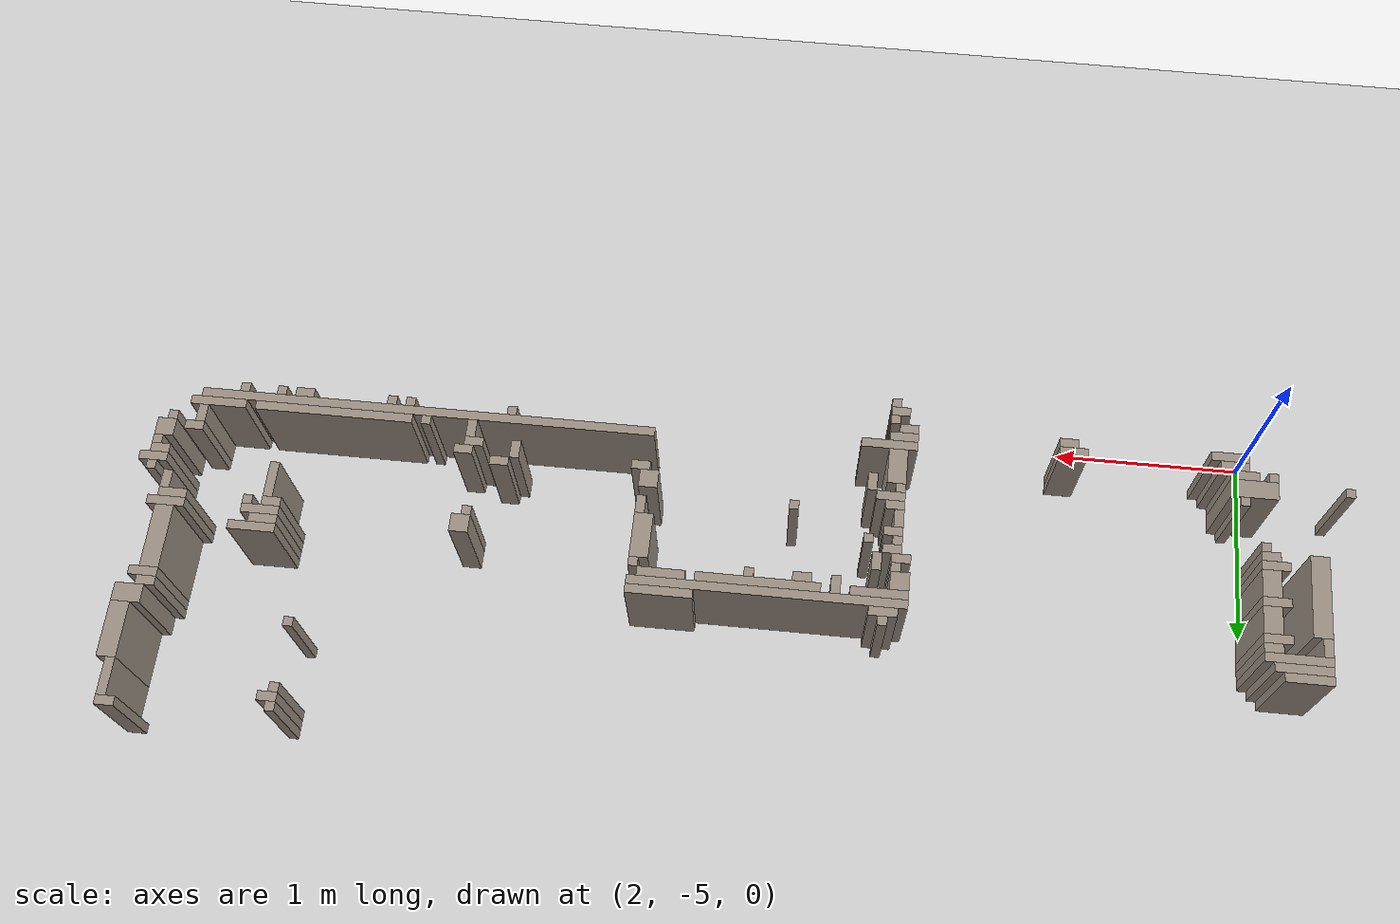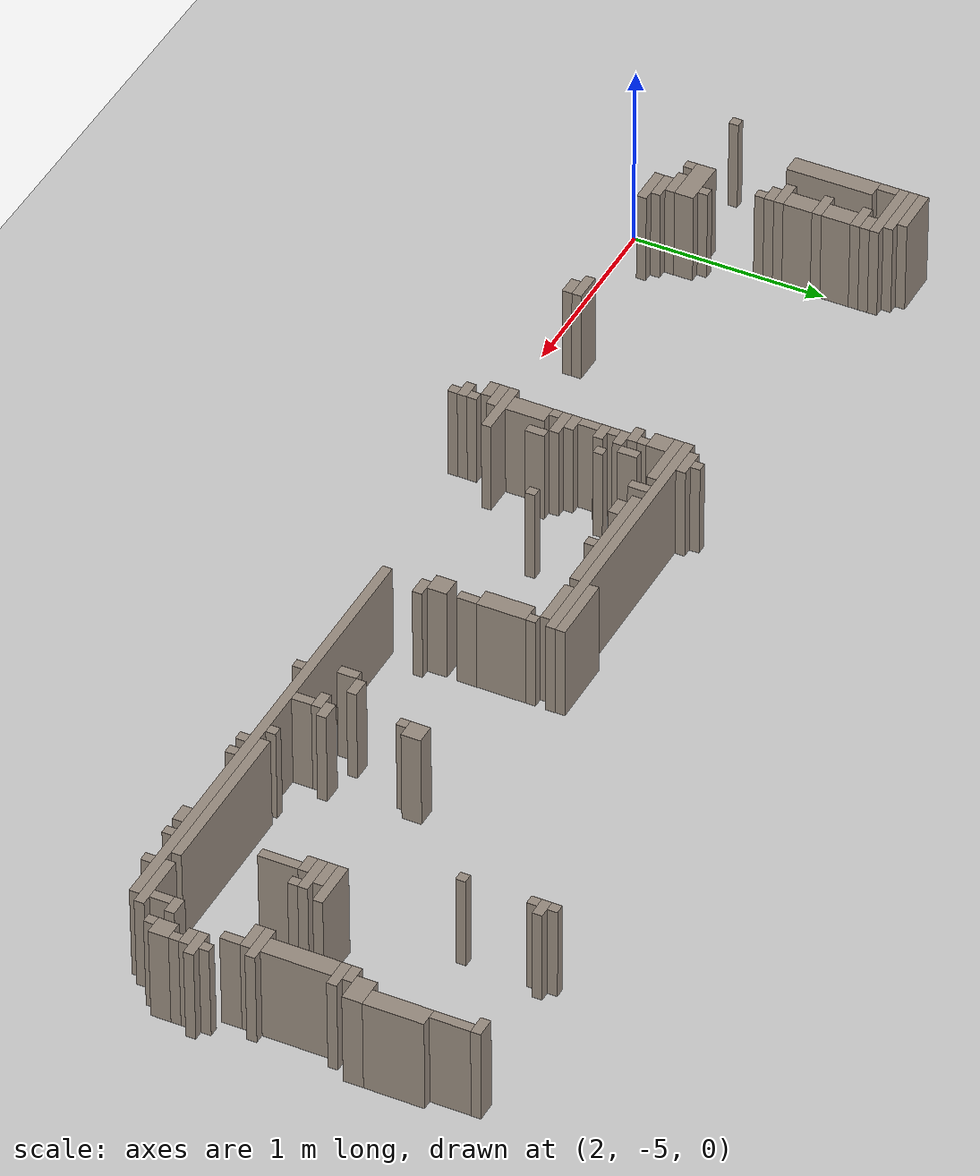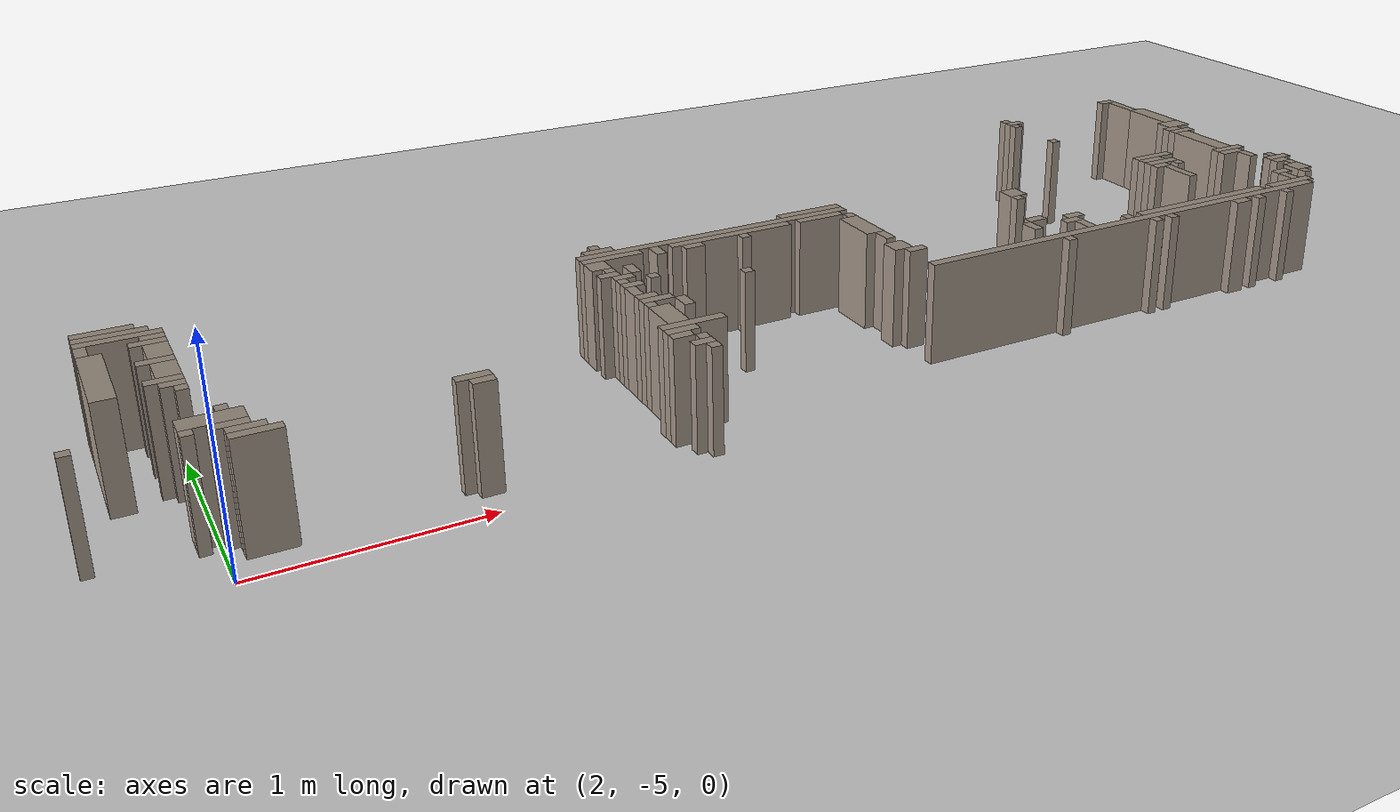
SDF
<sdf version="1.8">
 <world name="bolsao_real">
  <model name="ground_plane">
   <static>true</static>
   <link name="link">
    <collision name="col">
     <geometry><plane><normal>0 0 1</normal><size>100 100</size></plane></geometry>
    </collision>
    <visual name="vis">
     <geometry><plane><normal>0 0 1</normal><size>100 100</size></plane></geometry>
     <material><ambient>0.8 0.8 0.8 1</ambient><diffuse>0.8 0.8 0.8 1</diffuse></material>
    </visual>
   </link>
  </model>
  <model name="wall_83">
   <static>true</static>
   <pose>6.940 -2.988 0.250 0 0 0</pose>
   <link name="link">
    <collision name="col"><geometry><box><size>0.050 0.050 0.500</size></box></geometry></collision>
    <visual name="vis">
     <geometry><box><size>0.050 0.050 0.500</size></box></geometry>
     <material><ambient>0.6 0.55 0.5 1</ambient><diffuse>0.6 0.55 0.5 1</diffuse></material>
    </visual>
   </link>
  </model>
  <model name="wall_84">
   <static>true</static>
   <pose>6.940 -3.088 0.250 0 0 0</pose>
   <link name="link">
    <collision name="col"><geometry><box><size>0.050 0.050 0.500</size></box></geometry></collision>
    <visual name="vis">
     <geometry><box><size>0.050 0.050 0.500</size></box></geometry>
     <material><ambient>0.6 0.55 0.5 1</ambient><diffuse>0.6 0.55 0.5 1</diffuse></material>
    </visual>
   </link>
  </model>
  <model name="wall_88">
   <static>true</static>
   <pose>7.715 -3.588 0.250 0 0 0</pose>
   <link name="link">
    <collision name="col"><geometry><box><size>0.100 0.050 0.500</size></box></geometry></collision>
    <visual name="vis">
     <geometry><box><size>0.100 0.050 0.500</size></box></geometry>
     <material><ambient>0.6 0.55 0.5 1</ambient><diffuse>0.6 0.55 0.5 1</diffuse></material>
    </visual>
   </link>
  </model>
  <model name="wall_91">
   <static>true</static>
   <pose>1.965 -3.788 0.250 0 0 0</pose>
   <link name="link">
    <collision name="col"><geometry><box><size>0.100 0.050 0.500</size></box></geometry></collision>
    <visual name="vis">
     <geometry><box><size>0.100 0.050 0.500</size></box></geometry>
     <material><ambient>0.6 0.55 0.5 1</ambient><diffuse>0.6 0.55 0.5 1</diffuse></material>
    </visual>
   </link>
  </model>
  <model name="wall_96">
   <static>true</static>
   <pose>1.940 -3.838 0.250 0 0 0</pose>
   <link name="link">
    <collision name="col"><geometry><box><size>0.150 0.050 0.500</size></box></geometry></collision>
    <visual name="vis">
     <geometry><box><size>0.150 0.050 0.500</size></box></geometry>
     <material><ambient>0.6 0.55 0.5 1</ambient><diffuse>0.6 0.55 0.5 1</diffuse></material>
    </visual>
   </link>
  </model>
  <model name="wall_100">
   <static>true</static>
   <pose>1.965 -3.938 0.250 0 0 0</pose>
   <link name="link">
    <collision name="col"><geometry><box><size>0.100 0.150 0.500</size></box></geometry></collision>
    <visual name="vis">
     <geometry><box><size>0.100 0.150 0.500</size></box></geometry>
     <material><ambient>0.6 0.55 0.5 1</ambient><diffuse>0.6 0.55 0.5 1</diffuse></material>
    </visual>
   </link>
  </model>
  <model name="wall_101">
   <static>true</static>
   <pose>3.865 -3.963 0.250 0 0 0</pose>
   <link name="link">
    <collision name="col"><geometry><box><size>0.100 0.100 0.500</size></box></geometry></collision>
    <visual name="vis">
     <geometry><box><size>0.100 0.100 0.500</size></box></geometry>
     <material><ambient>0.6 0.55 0.5 1</ambient><diffuse>0.6 0.55 0.5 1</diffuse></material>
    </visual>
   </link>
  </model>
  <model name="wall_108">
   <static>true</static>
   <pose>3.890 -4.038 0.250 0 0 0</pose>
   <link name="link">
    <collision name="col"><geometry><box><size>0.050 0.050 0.500</size></box></geometry></collision>
    <visual name="vis">
     <geometry><box><size>0.050 0.050 0.500</size></box></geometry>
     <material><ambient>0.6 0.55 0.5 1</ambient><diffuse>0.6 0.55 0.5 1</diffuse></material>
    </visual>
   </link>
  </model>
  <model name="wall_109">
   <static>true</static>
   <pose>1.940 -4.038 0.250 0 0 0</pose>
   <link name="link">
    <collision name="col"><geometry><box><size>0.150 0.050 0.500</size></box></geometry></collision>
    <visual name="vis">
     <geometry><box><size>0.150 0.050 0.500</size></box></geometry>
     <material><ambient>0.6 0.55 0.5 1</ambient><diffuse>0.6 0.55 0.5 1</diffuse></material>
    </visual>
   </link>
  </model>
  <model name="wall_110">
   <static>true</static>
   <pose>3.915 -4.138 0.250 0 0 0</pose>
   <link name="link">
    <collision name="col"><geometry><box><size>0.100 0.050 0.500</size></box></geometry></collision>
    <visual name="vis">
     <geometry><box><size>0.100 0.050 0.500</size></box></geometry>
     <material><ambient>0.6 0.55 0.5 1</ambient><diffuse>0.6 0.55 0.5 1</diffuse></material>
    </visual>
   </link>
  </model>
  <model name="wall_111">
   <static>true</static>
   <pose>5.240 -3.938 0.250 0 0 0</pose>
   <link name="link">
    <collision name="col"><geometry><box><size>0.050 0.050 0.500</size></box></geometry></collision>
    <visual name="vis">
     <geometry><box><size>0.050 0.050 0.500</size></box></geometry>
     <material><ambient>0.6 0.55 0.5 1</ambient><diffuse>0.6 0.55 0.5 1</diffuse></material>
    </visual>
   </link>
  </model>
  <model name="wall_112">
   <static>true</static>
   <pose>1.965 -4.138 0.250 0 0 0</pose>
   <link name="link">
    <collision name="col"><geometry><box><size>0.100 0.150 0.500</size></box></geometry></collision>
    <visual name="vis">
     <geometry><box><size>0.100 0.150 0.500</size></box></geometry>
     <material><ambient>0.6 0.55 0.5 1</ambient><diffuse>0.6 0.55 0.5 1</diffuse></material>
    </visual>
   </link>
  </model>
  <model name="wall_113">
   <static>true</static>
   <pose>3.890 -4.188 0.250 0 0 0</pose>
   <link name="link">
    <collision name="col"><geometry><box><size>0.050 0.050 0.500</size></box></geometry></collision>
    <visual name="vis">
     <geometry><box><size>0.050 0.050 0.500</size></box></geometry>
     <material><ambient>0.6 0.55 0.5 1</ambient><diffuse>0.6 0.55 0.5 1</diffuse></material>
    </visual>
   </link>
  </model>
  <model name="wall_115">
   <static>true</static>
   <pose>7.815 -3.313 0.250 0 0 0</pose>
   <link name="link">
    <collision name="col"><geometry><box><size>0.100 0.300 0.500</size></box></geometry></collision>
    <visual name="vis">
     <geometry><box><size>0.100 0.300 0.500</size></box></geometry>
     <material><ambient>0.6 0.55 0.5 1</ambient><diffuse>0.6 0.55 0.5 1</diffuse></material>
    </visual>
   </link>
  </model>
  <model name="wall_116">
   <static>true</static>
   <pose>3.915 -4.238 0.250 0 0 0</pose>
   <link name="link">
    <collision name="col"><geometry><box><size>0.100 0.050 0.500</size></box></geometry></collision>
    <visual name="vis">
     <geometry><box><size>0.100 0.050 0.500</size></box></geometry>
     <material><ambient>0.6 0.55 0.5 1</ambient><diffuse>0.6 0.55 0.5 1</diffuse></material>
    </visual>
   </link>
  </model>
  <model name="wall_117">
   <static>true</static>
   <pose>5.215 -4.088 0.250 0 0 0</pose>
   <link name="link">
    <collision name="col"><geometry><box><size>0.100 0.250 0.500</size></box></geometry></collision>
    <visual name="vis">
     <geometry><box><size>0.100 0.250 0.500</size></box></geometry>
     <material><ambient>0.6 0.55 0.5 1</ambient><diffuse>0.6 0.55 0.5 1</diffuse></material>
    </visual>
   </link>
  </model>
  <model name="wall_118">
   <static>true</static>
   <pose>7.840 -4.238 0.250 0 0 0</pose>
   <link name="link">
    <collision name="col"><geometry><box><size>0.050 0.050 0.500</size></box></geometry></collision>
    <visual name="vis">
     <geometry><box><size>0.050 0.050 0.500</size></box></geometry>
     <material><ambient>0.6 0.55 0.5 1</ambient><diffuse>0.6 0.55 0.5 1</diffuse></material>
    </visual>
   </link>
  </model>
  <model name="wall_119">
   <static>true</static>
   <pose>3.940 -3.788 0.250 0 0 0</pose>
   <link name="link">
    <collision name="col"><geometry><box><size>0.150 0.050 0.500</size></box></geometry></collision>
    <visual name="vis">
     <geometry><box><size>0.150 0.050 0.500</size></box></geometry>
     <material><ambient>0.6 0.55 0.5 1</ambient><diffuse>0.6 0.55 0.5 1</diffuse></material>
    </visual>
   </link>
  </model>
  <model name="wall_121">
   <static>true</static>
   <pose>7.815 -4.338 0.250 0 0 0</pose>
   <link name="link">
    <collision name="col"><geometry><box><size>0.100 0.050 0.500</size></box></geometry></collision>
    <visual name="vis">
     <geometry><box><size>0.100 0.050 0.500</size></box></geometry>
     <material><ambient>0.6 0.55 0.5 1</ambient><diffuse>0.6 0.55 0.5 1</diffuse></material>
    </visual>
   </link>
  </model>
  <model name="wall_122">
   <static>true</static>
   <pose>3.890 -4.313 0.250 0 0 0</pose>
   <link name="link">
    <collision name="col"><geometry><box><size>0.050 0.100 0.500</size></box></geometry></collision>
    <visual name="vis">
     <geometry><box><size>0.050 0.100 0.500</size></box></geometry>
     <material><ambient>0.6 0.55 0.5 1</ambient><diffuse>0.6 0.55 0.5 1</diffuse></material>
    </visual>
   </link>
  </model>
  <model name="wall_123">
   <static>true</static>
   <pose>4.040 -4.188 0.250 0 0 0</pose>
   <link name="link">
    <collision name="col"><geometry><box><size>0.050 0.050 0.500</size></box></geometry></collision>
    <visual name="vis">
     <geometry><box><size>0.050 0.050 0.500</size></box></geometry>
     <material><ambient>0.6 0.55 0.5 1</ambient><diffuse>0.6 0.55 0.5 1</diffuse></material>
    </visual>
   </link>
  </model>
  <model name="wall_126">
   <static>true</static>
   <pose>3.915 -4.388 0.250 0 0 0</pose>
   <link name="link">
    <collision name="col"><geometry><box><size>0.100 0.050 0.500</size></box></geometry></collision>
    <visual name="vis">
     <geometry><box><size>0.100 0.050 0.500</size></box></geometry>
     <material><ambient>0.6 0.55 0.5 1</ambient><diffuse>0.6 0.55 0.5 1</diffuse></material>
    </visual>
   </link>
  </model>
  <model name="wall_127">
   <static>true</static>
   <pose>6.165 -4.063 0.250 0 0 0</pose>
   <link name="link">
    <collision name="col"><geometry><box><size>0.100 0.100 0.500</size></box></geometry></collision>
    <visual name="vis">
     <geometry><box><size>0.100 0.100 0.500</size></box></geometry>
     <material><ambient>0.6 0.55 0.5 1</ambient><diffuse>0.6 0.55 0.5 1</diffuse></material>
    </visual>
   </link>
  </model>
  <model name="wall_129">
   <static>true</static>
   <pose>7.790 -3.063 0.250 0 0 0</pose>
   <link name="link">
    <collision name="col"><geometry><box><size>0.050 0.200 0.500</size></box></geometry></collision>
    <visual name="vis">
     <geometry><box><size>0.050 0.200 0.500</size></box></geometry>
     <material><ambient>0.6 0.55 0.5 1</ambient><diffuse>0.6 0.55 0.5 1</diffuse></material>
    </visual>
   </link>
  </model>
  <model name="wall_133">
   <static>true</static>
   <pose>3.965 -3.888 0.250 0 0 0</pose>
   <link name="link">
    <collision name="col"><geometry><box><size>0.300 0.050 0.500</size></box></geometry></collision>
    <visual name="vis">
     <geometry><box><size>0.300 0.050 0.500</size></box></geometry>
     <material><ambient>0.6 0.55 0.5 1</ambient><diffuse>0.6 0.55 0.5 1</diffuse></material>
    </visual>
   </link>
  </model>
  <model name="wall_138">
   <static>true</static>
   <pose>3.865 -4.088 0.250 0 0 0</pose>
   <link name="link">
    <collision name="col"><geometry><box><size>0.100 0.050 0.500</size></box></geometry></collision>
    <visual name="vis">
     <geometry><box><size>0.100 0.050 0.500</size></box></geometry>
     <material><ambient>0.6 0.55 0.5 1</ambient><diffuse>0.6 0.55 0.5 1</diffuse></material>
    </visual>
   </link>
  </model>
  <model name="wall_139">
   <static>true</static>
   <pose>3.940 -3.738 0.250 0 0 0</pose>
   <link name="link">
    <collision name="col"><geometry><box><size>0.050 0.050 0.500</size></box></geometry></collision>
    <visual name="vis">
     <geometry><box><size>0.050 0.050 0.500</size></box></geometry>
     <material><ambient>0.6 0.55 0.5 1</ambient><diffuse>0.6 0.55 0.5 1</diffuse></material>
    </visual>
   </link>
  </model>
  <model name="wall_140">
   <static>true</static>
   <pose>3.915 -4.613 0.250 0 0 0</pose>
   <link name="link">
    <collision name="col"><geometry><box><size>0.100 0.200 0.500</size></box></geometry></collision>
    <visual name="vis">
     <geometry><box><size>0.100 0.200 0.500</size></box></geometry>
     <material><ambient>0.6 0.55 0.5 1</ambient><diffuse>0.6 0.55 0.5 1</diffuse></material>
    </visual>
   </link>
  </model>
  <model name="wall_141">
   <static>true</static>
   <pose>3.940 -4.888 0.250 0 0 0</pose>
   <link name="link">
    <collision name="col"><geometry><box><size>0.050 0.050 0.500</size></box></geometry></collision>
    <visual name="vis">
     <geometry><box><size>0.050 0.050 0.500</size></box></geometry>
     <material><ambient>0.6 0.55 0.5 1</ambient><diffuse>0.6 0.55 0.5 1</diffuse></material>
    </visual>
   </link>
  </model>
  <model name="wall_142">
   <static>true</static>
   <pose>3.990 -4.063 0.250 0 0 0</pose>
   <link name="link">
    <collision name="col"><geometry><box><size>0.050 0.100 0.500</size></box></geometry></collision>
    <visual name="vis">
     <geometry><box><size>0.050 0.100 0.500</size></box></geometry>
     <material><ambient>0.6 0.55 0.5 1</ambient><diffuse>0.6 0.55 0.5 1</diffuse></material>
    </visual>
   </link>
  </model>
  <model name="wall_148">
   <static>true</static>
   <pose>7.215 -4.038 0.250 0 0 0</pose>
   <link name="link">
    <collision name="col"><geometry><box><size>0.200 0.050 0.500</size></box></geometry></collision>
    <visual name="vis">
     <geometry><box><size>0.200 0.050 0.500</size></box></geometry>
     <material><ambient>0.6 0.55 0.5 1</ambient><diffuse>0.6 0.55 0.5 1</diffuse></material>
    </visual>
   </link>
  </model>
  <model name="wall_149">
   <static>true</static>
   <pose>7.665 -4.488 0.250 0 0 0</pose>
   <link name="link">
    <collision name="col"><geometry><box><size>0.100 0.050 0.500</size></box></geometry></collision>
    <visual name="vis">
     <geometry><box><size>0.100 0.050 0.500</size></box></geometry>
     <material><ambient>0.6 0.55 0.5 1</ambient><diffuse>0.6 0.55 0.5 1</diffuse></material>
    </visual>
   </link>
  </model>
  <model name="wall_150">
   <static>true</static>
   <pose>5.990 -4.738 0.250 0 0 0</pose>
   <link name="link">
    <collision name="col"><geometry><box><size>0.050 0.050 0.500</size></box></geometry></collision>
    <visual name="vis">
     <geometry><box><size>0.050 0.050 0.500</size></box></geometry>
     <material><ambient>0.6 0.55 0.5 1</ambient><diffuse>0.6 0.55 0.5 1</diffuse></material>
    </visual>
   </link>
  </model>
  <model name="wall_152">
   <static>true</static>
   <pose>7.690 -4.088 0.250 0 0 0</pose>
   <link name="link">
    <collision name="col"><geometry><box><size>0.150 0.050 0.500</size></box></geometry></collision>
    <visual name="vis">
     <geometry><box><size>0.150 0.050 0.500</size></box></geometry>
     <material><ambient>0.6 0.55 0.5 1</ambient><diffuse>0.6 0.55 0.5 1</diffuse></material>
    </visual>
   </link>
  </model>
  <model name="wall_153">
   <static>true</static>
   <pose>7.715 -3.838 0.250 0 0 0</pose>
   <link name="link">
    <collision name="col"><geometry><box><size>0.100 0.350 0.500</size></box></geometry></collision>
    <visual name="vis">
     <geometry><box><size>0.100 0.350 0.500</size></box></geometry>
     <material><ambient>0.6 0.55 0.5 1</ambient><diffuse>0.6 0.55 0.5 1</diffuse></material>
    </visual>
   </link>
  </model>
  <model name="wall_154">
   <static>true</static>
   <pose>7.240 -4.738 0.250 0 0 0</pose>
   <link name="link">
    <collision name="col"><geometry><box><size>0.050 0.050 0.500</size></box></geometry></collision>
    <visual name="vis">
     <geometry><box><size>0.050 0.050 0.500</size></box></geometry>
     <material><ambient>0.6 0.55 0.5 1</ambient><diffuse>0.6 0.55 0.5 1</diffuse></material>
    </visual>
   </link>
  </model>
  <model name="wall_157">
   <static>true</static>
   <pose>7.190 -4.213 0.250 0 0 0</pose>
   <link name="link">
    <collision name="col"><geometry><box><size>0.050 0.200 0.500</size></box></geometry></collision>
    <visual name="vis">
     <geometry><box><size>0.050 0.200 0.500</size></box></geometry>
     <material><ambient>0.6 0.55 0.5 1</ambient><diffuse>0.6 0.55 0.5 1</diffuse></material>
    </visual>
   </link>
  </model>
  <model name="wall_164">
   <static>true</static>
   <pose>7.290 -4.088 0.250 0 0 0</pose>
   <link name="link">
    <collision name="col"><geometry><box><size>0.050 0.050 0.500</size></box></geometry></collision>
    <visual name="vis">
     <geometry><box><size>0.050 0.050 0.500</size></box></geometry>
     <material><ambient>0.6 0.55 0.5 1</ambient><diffuse>0.6 0.55 0.5 1</diffuse></material>
    </visual>
   </link>
  </model>
  <model name="wall_165">
   <static>true</static>
   <pose>7.740 -4.163 0.250 0 0 0</pose>
   <link name="link">
    <collision name="col"><geometry><box><size>0.050 0.100 0.500</size></box></geometry></collision>
    <visual name="vis">
     <geometry><box><size>0.050 0.100 0.500</size></box></geometry>
     <material><ambient>0.6 0.55 0.5 1</ambient><diffuse>0.6 0.55 0.5 1</diffuse></material>
    </visual>
   </link>
  </model>
  <model name="wall_174">
   <static>true</static>
   <pose>6.015 -4.438 0.250 0 0 0</pose>
   <link name="link">
    <collision name="col"><geometry><box><size>0.100 0.050 0.500</size></box></geometry></collision>
    <visual name="vis">
     <geometry><box><size>0.100 0.050 0.500</size></box></geometry>
     <material><ambient>0.6 0.55 0.5 1</ambient><diffuse>0.6 0.55 0.5 1</diffuse></material>
    </visual>
   </link>
  </model>
  <model name="wall_175">
   <static>true</static>
   <pose>7.765 -2.938 0.250 0 0 0</pose>
   <link name="link">
    <collision name="col"><geometry><box><size>0.100 0.050 0.500</size></box></geometry></collision>
    <visual name="vis">
     <geometry><box><size>0.100 0.050 0.500</size></box></geometry>
     <material><ambient>0.6 0.55 0.5 1</ambient><diffuse>0.6 0.55 0.5 1</diffuse></material>
    </visual>
   </link>
  </model>
  <model name="wall_177">
   <static>true</static>
   <pose>3.865 -4.838 0.250 0 0 0</pose>
   <link name="link">
    <collision name="col"><geometry><box><size>0.100 0.050 0.500</size></box></geometry></collision>
    <visual name="vis">
     <geometry><box><size>0.100 0.050 0.500</size></box></geometry>
     <material><ambient>0.6 0.55 0.5 1</ambient><diffuse>0.6 0.55 0.5 1</diffuse></material>
    </visual>
   </link>
  </model>
  <model name="wall_178">
   <static>true</static>
   <pose>3.890 -4.788 0.250 0 0 0</pose>
   <link name="link">
    <collision name="col"><geometry><box><size>0.150 0.050 0.500</size></box></geometry></collision>
    <visual name="vis">
     <geometry><box><size>0.150 0.050 0.500</size></box></geometry>
     <material><ambient>0.6 0.55 0.5 1</ambient><diffuse>0.6 0.55 0.5 1</diffuse></material>
    </visual>
   </link>
  </model>
  <model name="wall_181">
   <static>true</static>
   <pose>6.140 -4.138 0.250 0 0 0</pose>
   <link name="link">
    <collision name="col"><geometry><box><size>0.050 0.050 0.500</size></box></geometry></collision>
    <visual name="vis">
     <geometry><box><size>0.050 0.050 0.500</size></box></geometry>
     <material><ambient>0.6 0.55 0.5 1</ambient><diffuse>0.6 0.55 0.5 1</diffuse></material>
    </visual>
   </link>
  </model>
  <model name="wall_183">
   <static>true</static>
   <pose>3.915 -4.938 0.250 0 0 0</pose>
   <link name="link">
    <collision name="col"><geometry><box><size>0.100 0.050 0.500</size></box></geometry></collision>
    <visual name="vis">
     <geometry><box><size>0.100 0.050 0.500</size></box></geometry>
     <material><ambient>0.6 0.55 0.5 1</ambient><diffuse>0.6 0.55 0.5 1</diffuse></material>
    </visual>
   </link>
  </model>
  <model name="wall_186">
   <static>true</static>
   <pose>6.215 -4.488 0.250 0 0 0</pose>
   <link name="link">
    <collision name="col"><geometry><box><size>0.100 0.050 0.500</size></box></geometry></collision>
    <visual name="vis">
     <geometry><box><size>0.100 0.050 0.500</size></box></geometry>
     <material><ambient>0.6 0.55 0.5 1</ambient><diffuse>0.6 0.55 0.5 1</diffuse></material>
    </visual>
   </link>
  </model>
  <model name="wall_187">
   <static>true</static>
   <pose>6.190 -4.613 0.250 0 0 0</pose>
   <link name="link">
    <collision name="col"><geometry><box><size>0.050 0.100 0.500</size></box></geometry></collision>
    <visual name="vis">
     <geometry><box><size>0.050 0.100 0.500</size></box></geometry>
     <material><ambient>0.6 0.55 0.5 1</ambient><diffuse>0.6 0.55 0.5 1</diffuse></material>
    </visual>
   </link>
  </model>
  <model name="wall_188">
   <static>true</static>
   <pose>7.640 -4.563 0.250 0 0 0</pose>
   <link name="link">
    <collision name="col"><geometry><box><size>0.050 0.100 0.500</size></box></geometry></collision>
    <visual name="vis">
     <geometry><box><size>0.050 0.100 0.500</size></box></geometry>
     <material><ambient>0.6 0.55 0.5 1</ambient><diffuse>0.6 0.55 0.5 1</diffuse></material>
    </visual>
   </link>
  </model>
  <model name="wall_196">
   <static>true</static>
   <pose>4.440 -4.338 0.250 0 0 0</pose>
   <link name="link">
    <collision name="col"><geometry><box><size>0.050 0.050 0.500</size></box></geometry></collision>
    <visual name="vis">
     <geometry><box><size>0.050 0.050 0.500</size></box></geometry>
     <material><ambient>0.6 0.55 0.5 1</ambient><diffuse>0.6 0.55 0.5 1</diffuse></material>
    </visual>
   </link>
  </model>
  <model name="wall_200">
   <static>true</static>
   <pose>1.540 -4.688 0.250 0 0 0</pose>
   <link name="link">
    <collision name="col"><geometry><box><size>0.050 0.050 0.500</size></box></geometry></collision>
    <visual name="vis">
     <geometry><box><size>0.050 0.050 0.500</size></box></geometry>
     <material><ambient>0.6 0.55 0.5 1</ambient><diffuse>0.6 0.55 0.5 1</diffuse></material>
    </visual>
   </link>
  </model>
  <model name="wall_208">
   <static>true</static>
   <pose>7.740 -3.638 0.250 0 0 0</pose>
   <link name="link">
    <collision name="col"><geometry><box><size>0.150 0.050 0.500</size></box></geometry></collision>
    <visual name="vis">
     <geometry><box><size>0.150 0.050 0.500</size></box></geometry>
     <material><ambient>0.6 0.55 0.5 1</ambient><diffuse>0.6 0.55 0.5 1</diffuse></material>
    </visual>
   </link>
  </model>
  <model name="wall_211">
   <static>true</static>
   <pose>3.940 -4.438 0.250 0 0 0</pose>
   <link name="link">
    <collision name="col"><geometry><box><size>0.150 0.050 0.500</size></box></geometry></collision>
    <visual name="vis">
     <geometry><box><size>0.150 0.050 0.500</size></box></geometry>
     <material><ambient>0.6 0.55 0.5 1</ambient><diffuse>0.6 0.55 0.5 1</diffuse></material>
    </visual>
   </link>
  </model>
  <model name="wall_214">
   <static>true</static>
   <pose>1.715 -4.088 0.250 0 0 0</pose>
   <link name="link">
    <collision name="col"><geometry><box><size>0.100 0.450 0.500</size></box></geometry></collision>
    <visual name="vis">
     <geometry><box><size>0.100 0.450 0.500</size></box></geometry>
     <material><ambient>0.6 0.55 0.5 1</ambient><diffuse>0.6 0.55 0.5 1</diffuse></material>
    </visual>
   </link>
  </model>
  <model name="wall_221">
   <static>true</static>
   <pose>4.365 -3.938 0.250 0 0 0</pose>
   <link name="link">
    <collision name="col"><geometry><box><size>0.100 0.050 0.500</size></box></geometry></collision>
    <visual name="vis">
     <geometry><box><size>0.100 0.050 0.500</size></box></geometry>
     <material><ambient>0.6 0.55 0.5 1</ambient><diffuse>0.6 0.55 0.5 1</diffuse></material>
    </visual>
   </link>
  </model>
  <model name="wall_230">
   <static>true</static>
   <pose>1.940 -4.738 0.250 0 0 0</pose>
   <link name="link">
    <collision name="col"><geometry><box><size>0.050 0.050 0.500</size></box></geometry></collision>
    <visual name="vis">
     <geometry><box><size>0.050 0.050 0.500</size></box></geometry>
     <material><ambient>0.6 0.55 0.5 1</ambient><diffuse>0.6 0.55 0.5 1</diffuse></material>
    </visual>
   </link>
  </model>
  <model name="wall_232">
   <static>true</static>
   <pose>7.790 -4.538 0.250 0 0 0</pose>
   <link name="link">
    <collision name="col"><geometry><box><size>0.050 0.050 0.500</size></box></geometry></collision>
    <visual name="vis">
     <geometry><box><size>0.050 0.050 0.500</size></box></geometry>
     <material><ambient>0.6 0.55 0.5 1</ambient><diffuse>0.6 0.55 0.5 1</diffuse></material>
    </visual>
   </link>
  </model>
  <model name="wall_238">
   <static>true</static>
   <pose>3.890 -4.488 0.250 0 0 0</pose>
   <link name="link">
    <collision name="col"><geometry><box><size>0.050 0.050 0.500</size></box></geometry></collision>
    <visual name="vis">
     <geometry><box><size>0.050 0.050 0.500</size></box></geometry>
     <material><ambient>0.6 0.55 0.5 1</ambient><diffuse>0.6 0.55 0.5 1</diffuse></material>
    </visual>
   </link>
  </model>
  <model name="wall_245">
   <static>true</static>
   <pose>5.215 -4.413 0.250 0 0 0</pose>
   <link name="link">
    <collision name="col"><geometry><box><size>0.100 0.100 0.500</size></box></geometry></collision>
    <visual name="vis">
     <geometry><box><size>0.100 0.100 0.500</size></box></geometry>
     <material><ambient>0.6 0.55 0.5 1</ambient><diffuse>0.6 0.55 0.5 1</diffuse></material>
    </visual>
   </link>
  </model>
  <model name="wall_247">
   <static>true</static>
   <pose>6.940 -3.438 0.250 0 0 0</pose>
   <link name="link">
    <collision name="col"><geometry><box><size>0.050 0.050 0.500</size></box></geometry></collision>
    <visual name="vis">
     <geometry><box><size>0.050 0.050 0.500</size></box></geometry>
     <material><ambient>0.6 0.55 0.5 1</ambient><diffuse>0.6 0.55 0.5 1</diffuse></material>
    </visual>
   </link>
  </model>
  <model name="wall_256">
   <static>true</static>
   <pose>5.240 -4.263 0.250 0 0 0</pose>
   <link name="link">
    <collision name="col"><geometry><box><size>0.050 0.100 0.500</size></box></geometry></collision>
    <visual name="vis">
     <geometry><box><size>0.050 0.100 0.500</size></box></geometry>
     <material><ambient>0.6 0.55 0.5 1</ambient><diffuse>0.6 0.55 0.5 1</diffuse></material>
    </visual>
   </link>
  </model>
  <model name="wall_257">
   <static>true</static>
   <pose>7.790 -3.513 0.250 0 0 0</pose>
   <link name="link">
    <collision name="col"><geometry><box><size>0.150 0.100 0.500</size></box></geometry></collision>
    <visual name="vis">
     <geometry><box><size>0.150 0.100 0.500</size></box></geometry>
     <material><ambient>0.6 0.55 0.5 1</ambient><diffuse>0.6 0.55 0.5 1</diffuse></material>
    </visual>
   </link>
  </model>
  <model name="wall_265">
   <static>true</static>
   <pose>6.640 -4.738 0.250 0 0 0</pose>
   <link name="link">
    <collision name="col"><geometry><box><size>0.050 0.050 0.500</size></box></geometry></collision>
    <visual name="vis">
     <geometry><box><size>0.050 0.050 0.500</size></box></geometry>
     <material><ambient>0.6 0.55 0.5 1</ambient><diffuse>0.6 0.55 0.5 1</diffuse></material>
    </visual>
   </link>
  </model>
  <model name="wall_267">
   <static>true</static>
   <pose>6.965 -3.038 0.250 0 0 0</pose>
   <link name="link">
    <collision name="col"><geometry><box><size>0.100 0.050 0.500</size></box></geometry></collision>
    <visual name="vis">
     <geometry><box><size>0.100 0.050 0.500</size></box></geometry>
     <material><ambient>0.6 0.55 0.5 1</ambient><diffuse>0.6 0.55 0.5 1</diffuse></material>
    </visual>
   </link>
  </model>
  <model name="wall_268">
   <static>true</static>
   <pose>7.815 -4.463 0.250 0 0 0</pose>
   <link name="link">
    <collision name="col"><geometry><box><size>0.100 0.100 0.500</size></box></geometry></collision>
    <visual name="vis">
     <geometry><box><size>0.100 0.100 0.500</size></box></geometry>
     <material><ambient>0.6 0.55 0.5 1</ambient><diffuse>0.6 0.55 0.5 1</diffuse></material>
    </visual>
   </link>
  </model>
  <model name="wall_269">
   <static>true</static>
   <pose>1.790 -3.638 0.250 0 0 0</pose>
   <link name="link">
    <collision name="col"><geometry><box><size>0.250 0.050 0.500</size></box></geometry></collision>
    <visual name="vis">
     <geometry><box><size>0.250 0.050 0.500</size></box></geometry>
     <material><ambient>0.6 0.55 0.5 1</ambient><diffuse>0.6 0.55 0.5 1</diffuse></material>
    </visual>
   </link>
  </model>
  <model name="wall_270">
   <static>true</static>
   <pose>1.815 -3.688 0.250 0 0 0</pose>
   <link name="link">
    <collision name="col"><geometry><box><size>0.300 0.050 0.500</size></box></geometry></collision>
    <visual name="vis">
     <geometry><box><size>0.300 0.050 0.500</size></box></geometry>
     <material><ambient>0.6 0.55 0.5 1</ambient><diffuse>0.6 0.55 0.5 1</diffuse></material>
    </visual>
   </link>
  </model>
  <model name="wall_271">
   <static>true</static>
   <pose>1.840 -3.738 0.250 0 0 0</pose>
   <link name="link">
    <collision name="col"><geometry><box><size>0.350 0.050 0.500</size></box></geometry></collision>
    <visual name="vis">
     <geometry><box><size>0.350 0.050 0.500</size></box></geometry>
     <material><ambient>0.6 0.55 0.5 1</ambient><diffuse>0.6 0.55 0.5 1</diffuse></material>
    </visual>
   </link>
  </model>
  <model name="wall_272">
   <static>true</static>
   <pose>3.940 -4.988 0.250 0 0 0</pose>
   <link name="link">
    <collision name="col"><geometry><box><size>0.050 0.050 0.500</size></box></geometry></collision>
    <visual name="vis">
     <geometry><box><size>0.050 0.050 0.500</size></box></geometry>
     <material><ambient>0.6 0.55 0.5 1</ambient><diffuse>0.6 0.55 0.5 1</diffuse></material>
    </visual>
   </link>
  </model>
  <model name="wall_273">
   <static>true</static>
   <pose>1.690 -3.813 0.250 0 0 0</pose>
   <link name="link">
    <collision name="col"><geometry><box><size>0.050 0.100 0.500</size></box></geometry></collision>
    <visual name="vis">
     <geometry><box><size>0.050 0.100 0.500</size></box></geometry>
     <material><ambient>0.6 0.55 0.5 1</ambient><diffuse>0.6 0.55 0.5 1</diffuse></material>
    </visual>
   </link>
  </model>
  <model name="wall_274">
   <static>true</static>
   <pose>1.965 -4.288 0.250 0 0 0</pose>
   <link name="link">
    <collision name="col"><geometry><box><size>0.100 0.050 0.500</size></box></geometry></collision>
    <visual name="vis">
     <geometry><box><size>0.100 0.050 0.500</size></box></geometry>
     <material><ambient>0.6 0.55 0.5 1</ambient><diffuse>0.6 0.55 0.5 1</diffuse></material>
    </visual>
   </link>
  </model>
  <model name="wall_275">
   <static>true</static>
   <pose>5.090 -3.788 0.250 0 0 0</pose>
   <link name="link">
    <collision name="col"><geometry><box><size>0.350 0.050 0.500</size></box></geometry></collision>
    <visual name="vis">
     <geometry><box><size>0.350 0.050 0.500</size></box></geometry>
     <material><ambient>0.6 0.55 0.5 1</ambient><diffuse>0.6 0.55 0.5 1</diffuse></material>
    </visual>
   </link>
  </model>
  <model name="wall_276">
   <static>true</static>
   <pose>1.940 -4.238 0.250 0 0 0</pose>
   <link name="link">
    <collision name="col"><geometry><box><size>0.150 0.050 0.500</size></box></geometry></collision>
    <visual name="vis">
     <geometry><box><size>0.150 0.050 0.500</size></box></geometry>
     <material><ambient>0.6 0.55 0.5 1</ambient><diffuse>0.6 0.55 0.5 1</diffuse></material>
    </visual>
   </link>
  </model>
  <model name="wall_277">
   <static>true</static>
   <pose>4.540 -3.838 0.250 0 0 0</pose>
   <link name="link">
    <collision name="col"><geometry><box><size>1.450 0.050 0.500</size></box></geometry></collision>
    <visual name="vis">
     <geometry><box><size>1.450 0.050 0.500</size></box></geometry>
     <material><ambient>0.6 0.55 0.5 1</ambient><diffuse>0.6 0.55 0.5 1</diffuse></material>
    </visual>
   </link>
  </model>
  <model name="wall_278">
   <static>true</static>
   <pose>3.965 -4.738 0.250 0 0 0</pose>
   <link name="link">
    <collision name="col"><geometry><box><size>0.300 0.050 0.500</size></box></geometry></collision>
    <visual name="vis">
     <geometry><box><size>0.300 0.050 0.500</size></box></geometry>
     <material><ambient>0.6 0.55 0.5 1</ambient><diffuse>0.6 0.55 0.5 1</diffuse></material>
    </visual>
   </link>
  </model>
  <model name="wall_279">
   <static>true</static>
   <pose>4.190 -3.913 0.250 0 0 0</pose>
   <link name="link">
    <collision name="col"><geometry><box><size>0.050 0.100 0.500</size></box></geometry></collision>
    <visual name="vis">
     <geometry><box><size>0.050 0.100 0.500</size></box></geometry>
     <material><ambient>0.6 0.55 0.5 1</ambient><diffuse>0.6 0.55 0.5 1</diffuse></material>
    </visual>
   </link>
  </model>
  <model name="wall_280">
   <static>true</static>
   <pose>4.590 -3.888 0.250 0 0 0</pose>
   <link name="link">
    <collision name="col"><geometry><box><size>0.650 0.050 0.500</size></box></geometry></collision>
    <visual name="vis">
     <geometry><box><size>0.650 0.050 0.500</size></box></geometry>
     <material><ambient>0.6 0.55 0.5 1</ambient><diffuse>0.6 0.55 0.5 1</diffuse></material>
    </visual>
   </link>
  </model>
  <model name="wall_281">
   <static>true</static>
   <pose>5.090 -3.888 0.250 0 0 0</pose>
   <link name="link">
    <collision name="col"><geometry><box><size>0.250 0.050 0.500</size></box></geometry></collision>
    <visual name="vis">
     <geometry><box><size>0.250 0.050 0.500</size></box></geometry>
     <material><ambient>0.6 0.55 0.5 1</ambient><diffuse>0.6 0.55 0.5 1</diffuse></material>
    </visual>
   </link>
  </model>
  <model name="wall_282">
   <static>true</static>
   <pose>4.640 -3.938 0.250 0 0 0</pose>
   <link name="link">
    <collision name="col"><geometry><box><size>0.050 0.050 0.500</size></box></geometry></collision>
    <visual name="vis">
     <geometry><box><size>0.050 0.050 0.500</size></box></geometry>
     <material><ambient>0.6 0.55 0.5 1</ambient><diffuse>0.6 0.55 0.5 1</diffuse></material>
    </visual>
   </link>
  </model>
  <model name="wall_283">
   <static>true</static>
   <pose>7.240 -3.938 0.250 0 0 0</pose>
   <link name="link">
    <collision name="col"><geometry><box><size>0.250 0.050 0.500</size></box></geometry></collision>
    <visual name="vis">
     <geometry><box><size>0.250 0.050 0.500</size></box></geometry>
     <material><ambient>0.6 0.55 0.5 1</ambient><diffuse>0.6 0.55 0.5 1</diffuse></material>
    </visual>
   </link>
  </model>
  <model name="wall_284">
   <static>true</static>
   <pose>7.190 -3.988 0.250 0 0 0</pose>
   <link name="link">
    <collision name="col"><geometry><box><size>0.150 0.050 0.500</size></box></geometry></collision>
    <visual name="vis">
     <geometry><box><size>0.150 0.050 0.500</size></box></geometry>
     <material><ambient>0.6 0.55 0.5 1</ambient><diffuse>0.6 0.55 0.5 1</diffuse></material>
    </visual>
   </link>
  </model>
  <model name="wall_285">
   <static>true</static>
   <pose>6.165 -4.538 0.250 0 0 0</pose>
   <link name="link">
    <collision name="col"><geometry><box><size>0.100 0.050 0.500</size></box></geometry></collision>
    <visual name="vis">
     <geometry><box><size>0.100 0.050 0.500</size></box></geometry>
     <material><ambient>0.6 0.55 0.5 1</ambient><diffuse>0.6 0.55 0.5 1</diffuse></material>
    </visual>
   </link>
  </model>
  <model name="wall_286">
   <static>true</static>
   <pose>7.715 -4.038 0.250 0 0 0</pose>
   <link name="link">
    <collision name="col"><geometry><box><size>0.200 0.050 0.500</size></box></geometry></collision>
    <visual name="vis">
     <geometry><box><size>0.200 0.050 0.500</size></box></geometry>
     <material><ambient>0.6 0.55 0.5 1</ambient><diffuse>0.6 0.55 0.5 1</diffuse></material>
    </visual>
   </link>
  </model>
  <model name="wall_287">
   <static>true</static>
   <pose>7.165 -4.088 0.250 0 0 0</pose>
   <link name="link">
    <collision name="col"><geometry><box><size>0.100 0.050 0.500</size></box></geometry></collision>
    <visual name="vis">
     <geometry><box><size>0.100 0.050 0.500</size></box></geometry>
     <material><ambient>0.6 0.55 0.5 1</ambient><diffuse>0.6 0.55 0.5 1</diffuse></material>
    </visual>
   </link>
  </model>
  <model name="wall_288">
   <static>true</static>
   <pose>4.040 -4.513 0.250 0 0 0</pose>
   <link name="link">
    <collision name="col"><geometry><box><size>0.050 0.100 0.500</size></box></geometry></collision>
    <visual name="vis">
     <geometry><box><size>0.050 0.100 0.500</size></box></geometry>
     <material><ambient>0.6 0.55 0.5 1</ambient><diffuse>0.6 0.55 0.5 1</diffuse></material>
    </visual>
   </link>
  </model>
  <model name="wall_289">
   <static>true</static>
   <pose>7.840 -4.388 0.250 0 0 0</pose>
   <link name="link">
    <collision name="col"><geometry><box><size>0.050 0.050 0.500</size></box></geometry></collision>
    <visual name="vis">
     <geometry><box><size>0.050 0.050 0.500</size></box></geometry>
     <material><ambient>0.6 0.55 0.5 1</ambient><diffuse>0.6 0.55 0.5 1</diffuse></material>
    </visual>
   </link>
  </model>
  <model name="wall_290">
   <static>true</static>
   <pose>7.840 -4.288 0.250 0 0 0</pose>
   <link name="link">
    <collision name="col"><geometry><box><size>0.150 0.050 0.500</size></box></geometry></collision>
    <visual name="vis">
     <geometry><box><size>0.150 0.050 0.500</size></box></geometry>
     <material><ambient>0.6 0.55 0.5 1</ambient><diffuse>0.6 0.55 0.5 1</diffuse></material>
    </visual>
   </link>
  </model>
  <model name="wall_291">
   <static>true</static>
   <pose>1.990 -4.338 0.250 0 0 0</pose>
   <link name="link">
    <collision name="col"><geometry><box><size>0.050 0.050 0.500</size></box></geometry></collision>
    <visual name="vis">
     <geometry><box><size>0.050 0.050 0.500</size></box></geometry>
     <material><ambient>0.6 0.55 0.5 1</ambient><diffuse>0.6 0.55 0.5 1</diffuse></material>
    </visual>
   </link>
  </model>
  <model name="wall_292">
   <static>true</static>
   <pose>5.265 -4.488 0.250 0 0 0</pose>
   <link name="link">
    <collision name="col"><geometry><box><size>0.100 0.050 0.500</size></box></geometry></collision>
    <visual name="vis">
     <geometry><box><size>0.100 0.050 0.500</size></box></geometry>
     <material><ambient>0.6 0.55 0.5 1</ambient><diffuse>0.6 0.55 0.5 1</diffuse></material>
    </visual>
   </link>
  </model>
  <model name="wall_293">
   <static>true</static>
   <pose>5.940 -4.513 0.250 0 0 0</pose>
   <link name="link">
    <collision name="col"><geometry><box><size>0.050 0.100 0.500</size></box></geometry></collision>
    <visual name="vis">
     <geometry><box><size>0.050 0.100 0.500</size></box></geometry>
     <material><ambient>0.6 0.55 0.5 1</ambient><diffuse>0.6 0.55 0.5 1</diffuse></material>
    </visual>
   </link>
  </model>
  <model name="wall_294">
   <static>true</static>
   <pose>2.090 -4.588 0.250 0 0 0</pose>
   <link name="link">
    <collision name="col"><geometry><box><size>0.050 0.050 0.500</size></box></geometry></collision>
    <visual name="vis">
     <geometry><box><size>0.050 0.050 0.500</size></box></geometry>
     <material><ambient>0.6 0.55 0.5 1</ambient><diffuse>0.6 0.55 0.5 1</diffuse></material>
    </visual>
   </link>
  </model>
  <model name="wall_295">
   <static>true</static>
   <pose>2.040 -4.663 0.250 0 0 0</pose>
   <link name="link">
    <collision name="col"><geometry><box><size>0.250 0.100 0.500</size></box></geometry></collision>
    <visual name="vis">
     <geometry><box><size>0.250 0.100 0.500</size></box></geometry>
     <material><ambient>0.6 0.55 0.5 1</ambient><diffuse>0.6 0.55 0.5 1</diffuse></material>
    </visual>
   </link>
  </model>
  <model name="wall_296">
   <static>true</static>
   <pose>6.440 -4.638 0.250 0 0 0</pose>
   <link name="link">
    <collision name="col"><geometry><box><size>0.050 0.050 0.500</size></box></geometry></collision>
    <visual name="vis">
     <geometry><box><size>0.050 0.050 0.500</size></box></geometry>
     <material><ambient>0.6 0.55 0.5 1</ambient><diffuse>0.6 0.55 0.5 1</diffuse></material>
    </visual>
   </link>
  </model>
  <model name="wall_297">
   <static>true</static>
   <pose>6.940 -4.638 0.250 0 0 0</pose>
   <link name="link">
    <collision name="col"><geometry><box><size>0.850 0.050 0.500</size></box></geometry></collision>
    <visual name="vis">
     <geometry><box><size>0.850 0.050 0.500</size></box></geometry>
     <material><ambient>0.6 0.55 0.5 1</ambient><diffuse>0.6 0.55 0.5 1</diffuse></material>
    </visual>
   </link>
  </model>
  <model name="wall_298">
   <static>true</static>
   <pose>7.565 -4.638 0.250 0 0 0</pose>
   <link name="link">
    <collision name="col"><geometry><box><size>0.300 0.050 0.500</size></box></geometry></collision>
    <visual name="vis">
     <geometry><box><size>0.300 0.050 0.500</size></box></geometry>
     <material><ambient>0.6 0.55 0.5 1</ambient><diffuse>0.6 0.55 0.5 1</diffuse></material>
    </visual>
   </link>
  </model>
  <model name="wall_299">
   <static>true</static>
   <pose>6.440 -4.688 0.250 0 0 0</pose>
   <link name="link">
    <collision name="col"><geometry><box><size>2.450 0.050 0.500</size></box></geometry></collision>
    <visual name="vis">
     <geometry><box><size>2.450 0.050 0.500</size></box></geometry>
     <material><ambient>0.6 0.55 0.5 1</ambient><diffuse>0.6 0.55 0.5 1</diffuse></material>
    </visual>
   </link>
  </model>
  <model name="wall_300">
   <static>true</static>
   <pose>2.090 -4.738 0.250 0 0 0</pose>
   <link name="link">
    <collision name="col"><geometry><box><size>0.150 0.050 0.500</size></box></geometry></collision>
    <visual name="vis">
     <geometry><box><size>0.150 0.050 0.500</size></box></geometry>
     <material><ambient>0.6 0.55 0.5 1</ambient><diffuse>0.6 0.55 0.5 1</diffuse></material>
    </visual>
   </link>
  </model>
  <model name="wall_301">
   <static>true</static>
   <pose>6.540 -4.738 0.250 0 0 0</pose>
   <link name="link">
    <collision name="col"><geometry><box><size>0.050 0.050 0.500</size></box></geometry></collision>
    <visual name="vis">
     <geometry><box><size>0.050 0.050 0.500</size></box></geometry>
     <material><ambient>0.6 0.55 0.5 1</ambient><diffuse>0.6 0.55 0.5 1</diffuse></material>
    </visual>
   </link>
  </model>
  <model name="wall_302">
   <static>true</static>
   <pose>7.115 -4.738 0.250 0 0 0</pose>
   <link name="link">
    <collision name="col"><geometry><box><size>0.100 0.050 0.500</size></box></geometry></collision>
    <visual name="vis">
     <geometry><box><size>0.100 0.050 0.500</size></box></geometry>
     <material><ambient>0.6 0.55 0.5 1</ambient><diffuse>0.6 0.55 0.5 1</diffuse></material>
    </visual>
   </link>
  </model>
  <model name="wall_303">
   <static>true</static>
   <pose>7.440 -4.738 0.250 0 0 0</pose>
   <link name="link">
    <collision name="col"><geometry><box><size>0.050 0.050 0.500</size></box></geometry></collision>
    <visual name="vis">
     <geometry><box><size>0.050 0.050 0.500</size></box></geometry>
     <material><ambient>0.6 0.55 0.5 1</ambient><diffuse>0.6 0.55 0.5 1</diffuse></material>
    </visual>
   </link>
  </model>
  <model name="wall_304">
   <static>true</static>
   <pose>2.140 -4.788 0.250 0 0 0</pose>
   <link name="link">
    <collision name="col"><geometry><box><size>0.150 0.050 0.500</size></box></geometry></collision>
    <visual name="vis">
     <geometry><box><size>0.150 0.050 0.500</size></box></geometry>
     <material><ambient>0.6 0.55 0.5 1</ambient><diffuse>0.6 0.55 0.5 1</diffuse></material>
    </visual>
   </link>
  </model>
  <model name="wall_305">
   <static>true</static>
   <pose>2.990 -4.788 0.250 0 0 0</pose>
   <link name="link">
    <collision name="col"><geometry><box><size>0.150 0.050 0.500</size></box></geometry></collision>
    <visual name="vis">
     <geometry><box><size>0.150 0.050 0.500</size></box></geometry>
     <material><ambient>0.6 0.55 0.5 1</ambient><diffuse>0.6 0.55 0.5 1</diffuse></material>
    </visual>
   </link>
  </model>
  <model name="wall_306">
   <static>true</static>
   <pose>2.165 -4.838 0.250 0 0 0</pose>
   <link name="link">
    <collision name="col"><geometry><box><size>0.200 0.050 0.500</size></box></geometry></collision>
    <visual name="vis">
     <geometry><box><size>0.200 0.050 0.500</size></box></geometry>
     <material><ambient>0.6 0.55 0.5 1</ambient><diffuse>0.6 0.55 0.5 1</diffuse></material>
    </visual>
   </link>
  </model>
  <model name="wall_307">
   <static>true</static>
   <pose>3.015 -4.838 0.250 0 0 0</pose>
   <link name="link">
    <collision name="col"><geometry><box><size>0.100 0.050 0.500</size></box></geometry></collision>
    <visual name="vis">
     <geometry><box><size>0.100 0.050 0.500</size></box></geometry>
     <material><ambient>0.6 0.55 0.5 1</ambient><diffuse>0.6 0.55 0.5 1</diffuse></material>
    </visual>
   </link>
  </model>
 </world>
</sdf>
